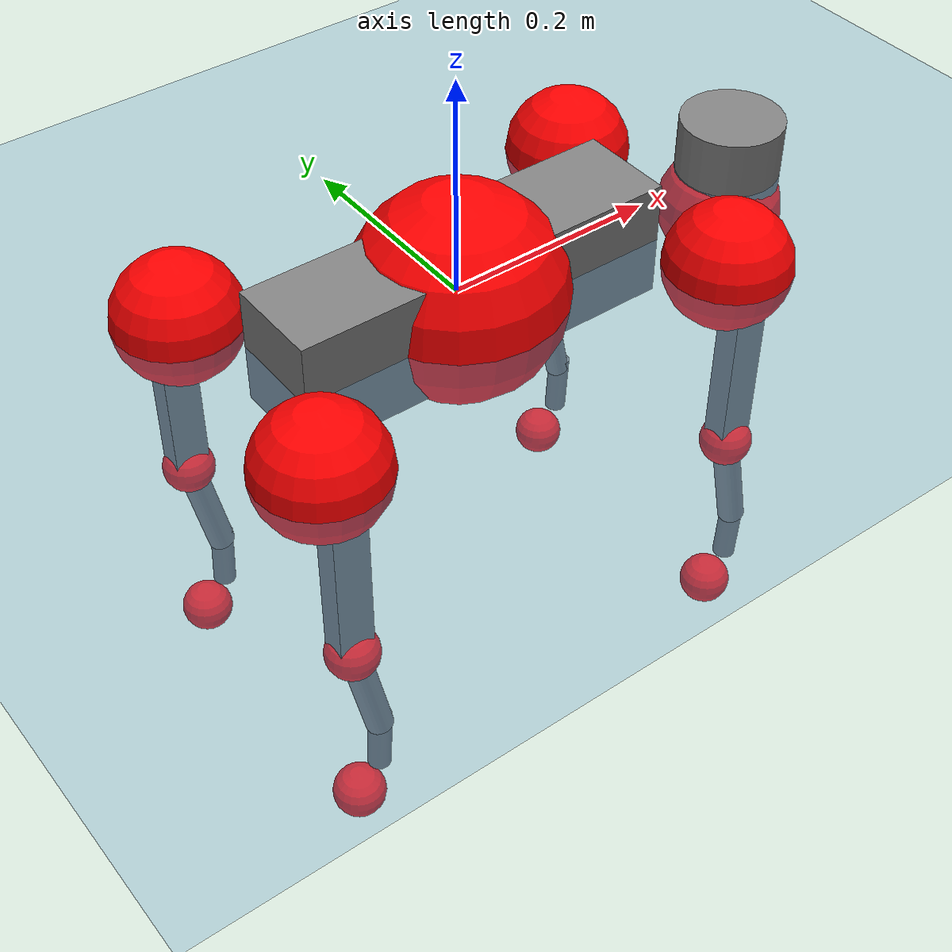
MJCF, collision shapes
<mujoco model="go2">
  <compiler angle="radian" assetdir="assets" balanceinertia="true" inertiafromgeom="false"/>

  <option timestep="0.005" density="1.2" viscosity="2e-05"/>

  <size nkey="1"/>

  <visual>
    <quality shadowsize="8192"/>
    <map shadowclip="0.5"/>
  </visual>

  <default>
    <default class="/">
      <geom contype="0" conaffinity="0" group="1" solref="-1000 -80"/>
      <site size="0.01 0.005 0.005" group="5"/>
      <general forcelimited="true" biastype="affine" gainprm="20" biasprm="0 -20 -0.5"/>
      <default class="go2">
        <joint armature="0.01" damping="0.01" frictionloss="0.2"/>
        <geom condim="1" margin="0.001"/>
        <default class="visual">
          <geom type="mesh" group="2"/>
        </default>
        <default class="collision">
          <geom group="3"/>
          <default class="foot">
            <geom size="0.022 0 0" condim="6" priority="1" friction="0.8 0.02 0.01" solimp="0.015 1 0.022"/>
          </default>
        </default>
        <default class="reward_collision_sphere">
          <geom group="5" rgba="1 0 0 1"/>
        </default>
      </default>
    </default>
  </default>

  <asset>
    <texture type="skybox" colorspace="auto" name="//unnamed_texture_0" builtin="gradient" rgb1="0.95 0.95 0.95" rgb2="0.95 0.95 0.95" width="100" height="600"/>
    <texture type="2d" colorspace="auto" name="texplane" builtin="checker" rgb1="0.345 0.575 0.748" rgb2="0.345 0.575 0.748" markrgb="1 1 1" width="512" height="512"/>
    <material name="MatPlane" class="/" texture="texplane" texuniform="true" texrepeat="2 2" specular="0.9"/>
    <material name="metal" class="/" rgba="0.9 0.95 0.95 1"/>
    <material name="black" class="/" rgba="0 0 0 1"/>
    <material name="white" class="/"/>
    <material name="gray" class="/" rgba="0.671705 0.692426 0.77427 1"/>
    <mesh name="base_0" class="/" file="base_0.obj"/>
    <mesh name="base_1" class="/" file="base_1.obj"/>
    <mesh name="base_2" class="/" file="base_2.obj"/>
    <mesh name="base_3" class="/" file="base_3.obj"/>
    <mesh name="base_4" class="/" file="base_4.obj"/>
    <mesh name="hip_0" class="/" file="hip_0.obj"/>
    <mesh name="hip_1" class="/" file="hip_1.obj"/>
    <mesh name="thigh_0" class="/" file="thigh_0.obj"/>
    <mesh name="thigh_1" class="/" file="thigh_1.obj"/>
    <mesh name="thigh_mirror_0" class="/" file="thigh_mirror_0.obj"/>
    <mesh name="thigh_mirror_1" class="/" file="thigh_mirror_1.obj"/>
    <mesh name="calf_0" class="/" file="calf_0.obj"/>
    <mesh name="calf_1" class="/" file="calf_1.obj"/>
    <mesh name="calf_mirror_0" class="/" file="calf_mirror_0.obj"/>
    <mesh name="calf_mirror_1" class="/" file="calf_mirror_1.obj"/>
    <mesh name="foot" class="/" file="foot.obj"/>
  </asset>

  <worldbody>
    <geom name="floor" class="/" size="100 100 0.125" type="plane" group="0" material="MatPlane"/>
    <light name="toplight_shadow" class="/" pos="0 0 5" dir="0.0990148 0.0990148 -0.990148" type="directional" ambient="0.04 0.04 0.04" diffuse="0.55 0.55 0.55" specular="0.12 0.12 0.12"/>
    <light name="toplight_fill" class="/" pos="0 0 5" dir="0.0990148 0.0990148 -0.990148" type="directional" castshadow="false" ambient="0.04 0.04 0.04" diffuse="0.3 0.3 0.3" specular="0.08 0.08 0.08"/>
    <body name="trunk" childclass="go2" pos="0.000944487 -0.00084544 -2.83336e-05" quat="1 1.87214e-05 -2.72386e-05 4.27199e-06">
      <inertial pos="0.0224685 -0.000319967 -0.00461809" quat="-0.00129407 0.714789 0.00246373 0.699334" mass="5.94008" diaginertia="0.149034 0.0679646 0.0121807"/>
      <joint name="//unnamed_joint_0" type="free" armature="0" damping="0" frictionloss="0"/>
      <geom name="//unnamed_geom_1" class="visual" material="black" mesh="base_0"/>
      <geom name="//unnamed_geom_2" class="visual" material="black" mesh="base_1"/>
      <geom name="//unnamed_geom_3" class="visual" material="black" mesh="base_2"/>
      <geom name="//unnamed_geom_4" class="visual" material="white" mesh="base_3"/>
      <geom name="//unnamed_geom_5" class="visual" material="gray" mesh="base_4"/>
      <geom name="trunk_1" class="collision" size="0.179548 0.0446245 0.0544084" type="box"/>
      <geom name="trunk_2" class="collision" size="0.0477267 0.042954" pos="0.303472 0 0.00869185" type="cylinder"/>
      <geom name="trunk_3" class="collision" size="0.0448631" pos="0.31199 0 -0.0521511"/>
      <geom name="//unnamed_geom_9" class="reward_collision_sphere" size="0.0954534"/>
      <geom name="//unnamed_geom_10" class="reward_collision_sphere" size="0.057272" pos="0.298148 0 -0.0391133"/>
      <site name="imu" pos="-0.0281072 -0.00262405 0.0290864" size="0.00954534"/>
      <camera name="track" pos="0 -1.8592 0" quat="0.707107 0.707107 0 0" mode="trackcom"/>
      <camera name="ego_camera" pos="0.332222 0 0.0391133" quat="-0.5 -0.5 0.5 0.5"/>
      <body name="FL_hip" pos="0.205808 0.0443634 0.00119402" quat="1 0.000131855 -0.000239272 0.000108608">
        <inertial pos="-0.00682265 0.00280555 1.24e-05" quat="0.496344 0.49972 0.505954 0.497929" mass="0.590185" diaginertia="0.00121037 0.000416524 0.000237647"/>
        <joint name="FL_hip_joint" pos="0 0 0" axis="0.99991 -0.00819635 -0.010596" range="-1.04994 1.04931" armature="0.00880702" damping="0.00737287" frictionloss="0.181578"/>
        <geom name="//unnamed_geom_11" class="visual" material="metal" mesh="hip_0"/>
        <geom name="//unnamed_geom_12" class="visual" material="gray" mesh="hip_1"/>
        <geom name="//unnamed_geom_13" class="collision" size="0.0439086 0.0190907" pos="0 0.0743682 0" quat="0.707107 0.707107 0 0" type="cylinder"/>
        <geom name="//unnamed_geom_14" class="reward_collision_sphere" size="0.057272" pos="0 0.0650722 0"/>
        <body name="FL_thigh" pos="-2.04781e-05 0.0894833 0.00129795" quat="1 0.000400853 0.000181725 -0.000301074">
          <inertial pos="-0.00442081 -0.0207101 -0.0299372" quat="0.831366 0.083349 -0.0164362 0.549193" mass="1.00671" diaginertia="0.00817685 0.00408768 0.000441062"/>
          <joint name="FL_thigh_joint" pos="0 0 0" axis="0.00353223 0.999991 0.00228199" range="-1.5886 3.49393" armature="0.00978066" damping="0.00835338" frictionloss="0.198892"/>
          <geom name="//unnamed_geom_15" class="visual" material="metal" mesh="thigh_0"/>
          <geom name="//unnamed_geom_16" class="visual" material="gray" mesh="thigh_1"/>
          <geom name="//unnamed_geom_17" class="collision" size="0.101658 0.011693 0.0162271" pos="0 0 -0.0925682" quat="0.707107 0 0.707107 0" type="box"/>
          <body name="FL_calf" pos="-0.000404138 -0.00213224 -0.185339" quat="1 -7.25641e-05 0.000103224 7.99115e-05">
            <inertial pos="0.00590424 -0.00086217 -0.122397" quat="0.707061 0.00121154 -0.008582 0.707099" mass="0.205993" diaginertia="0.00202025 0.00100875 2.59311e-05"/>
            <joint name="FL_calf_joint" pos="0 0 0" axis="-0.000169653 0.999957 -0.00932425" stiffness="0.00263818" range="-2.72416 -0.846891" armature="0.00966189" damping="0.0052686" frictionloss="0.193827"/>
            <geom name="//unnamed_geom_18" class="visual" material="gray" mesh="calf_0"/>
            <geom name="//unnamed_geom_19" class="visual" material="black" mesh="calf_1"/>
            <geom name="FL_calf0" class="collision" size="0.0114544 0.057272" pos="0.00851851 0 -0.0521511" quat="0.994493 0 -0.104807 0" type="cylinder"/>
            <geom name="//unnamed_geom_21" class="collision" size="0.0104999 0.0310223" pos="0.0212963 0 -0.128639" quat="0.999688 0 0.0249974 0" type="cylinder"/>
            <geom name="//unnamed_geom_22" class="visual" pos="0 0 -0.185136" quat="1 0 0 0" material="black" mesh="foot"/>
            <geom name="FL_foot" class="foot" size="0.017644" pos="-0.00212963 0 -0.185136"/>
            <geom name="//unnamed_geom_24" class="reward_collision_sphere" size="0.0238633"/>
            <geom name="//unnamed_geom_25" class="reward_collision_sphere" size="0.0238633" pos="-0.00212963 0 -0.185136"/>
            <site name="FL_foot" class="foot" pos="-0.00212963 0 -0.185136" size="0.00954534"/>
          </body>
        </body>
      </body>
      <body name="FR_hip" pos="0.205115 -0.0409461 -0.000821529" quat="1 -0.000162257 -5.09821e-05 -2.91928e-05">
        <inertial pos="-0.00384055 -0.00200681 -0.00209121" quat="0.498707 0.50541 0.496534 0.499305" mass="0.604279" diaginertia="0.001234 0.000423974 0.00024268"/>
        <joint name="FR_hip_joint" pos="0 0 0" axis="0.999998 0.00150901 0.00133781" stiffness="0.0065185" range="-1.07507 1.05613" armature="0.00963344" damping="0.0133508" frictionloss="0.186074"/>
        <geom name="//unnamed_geom_26" class="visual" pos="0 5.26329e-10 2.25753e-08" quat="4.63268e-05 1 0 0" material="metal" mesh="hip_0"/>
        <geom name="//unnamed_geom_27" class="visual" pos="0 8.53242e-10 -5.58374e-08" quat="4.63268e-05 1 0 0" material="gray" mesh="hip_1"/>
        <geom name="//unnamed_geom_28" class="collision" size="0.0439086 0.0190907" pos="0 -0.0743682 0" quat="0.707107 0.707107 0 0" type="cylinder"/>
        <geom name="//unnamed_geom_29" class="reward_collision_sphere" size="0.057272" pos="0 -0.0650722 0"/>
        <body name="FR_thigh" pos="2.82163e-05 -0.0890969 -0.000299838" quat="1 -2.83539e-05 -6.97966e-05 1.85653e-05">
          <inertial pos="-0.00269165 0.0228419 -0.0286029" quat="0.551881 -0.0203181 0.0851529 0.829315" mass="0.99463" diaginertia="0.00807921 0.00405248 0.000433053"/>
          <joint name="FR_thigh_joint" pos="0 0 0" axis="0.00171649 -0.999993 -0.00332134" range="-3.5016 1.54958" armature="0.00966083" damping="0.0121281" frictionloss="0.194742"/>
          <geom name="//unnamed_geom_30" class="visual" material="metal" mesh="thigh_mirror_0"/>
          <geom name="//unnamed_geom_31" class="visual" material="gray" mesh="thigh_mirror_1"/>
          <geom name="//unnamed_geom_32" class="collision" size="0.101658 0.011693 0.0162271" pos="0 0 -0.0925682" quat="0.707107 0 0.707107 0" type="box"/>
          <body name="FR_calf" pos="-0.000293719 -0.000897854 -0.184437" quat="1 0.00063143 0.000327457 0.000413941">
            <inertial pos="0.00873319 0.00129131 -0.122775" quat="0.704222 -0.0025495 0.000828888 0.709975" mass="0.207098" diaginertia="0.00200166 0.00101794 2.67338e-05"/>
            <joint name="FR_calf_joint" pos="0 0 0" axis="-0.000550321 -1 0.000218977" range="0.806629 2.72361" armature="0.00980669" damping="0.0145736" frictionloss="0.198929"/>
            <geom name="//unnamed_geom_33" class="visual" material="gray" mesh="calf_mirror_0"/>
            <geom name="//unnamed_geom_34" class="visual" material="black" mesh="calf_mirror_1"/>
            <geom name="FR_calf0" class="collision" size="0.0124089 0.057272" pos="0.0106481 0 -0.0521511" quat="0.995004 0 -0.0998334 0" type="cylinder"/>
            <geom name="//unnamed_geom_36" class="collision" size="0.0104999 0.0310223" pos="0.0212963 0 -0.128639" quat="0.999688 0 0.0249974 0" type="cylinder"/>
            <geom name="//unnamed_geom_37" class="visual" pos="0 0 -0.185136" quat="1 0 0 0" material="black" mesh="foot"/>
            <geom name="FR_foot" class="foot" size="0.0218811" pos="-0.00212963 0 -0.185136"/>
            <geom name="//unnamed_geom_39" class="reward_collision_sphere" size="0.0238633"/>
            <geom name="//unnamed_geom_40" class="reward_collision_sphere" size="0.0238633" pos="-0.00212963 0 -0.185136"/>
            <site name="FR_foot" class="foot" pos="-0.00212963 0 -0.185136" size="0.00954534"/>
          </body>
        </body>
      </body>
      <body name="RL_hip" pos="-0.204062 0.0431288 0.000720955" quat="1 -6.47746e-05 5.58606e-05 -0.000108704">
        <inertial pos="0.00709216 0.000320613 0.000155111" quat="0.502237 0.499898 0.497801 0.500053" mass="0.595503" diaginertia="0.00120904 0.000412115 0.000235571"/>
        <joint name="RL_hip_joint" pos="0 0 0" axis="-0.999807 -0.00743003 0.0181656" range="-1.05536 1.03125" armature="0.00950247" damping="0.00908132" frictionloss="0.197059"/>
        <geom name="//unnamed_geom_41" class="visual" pos="-1.70423e-09 0 -3.34069e-07" quat="4.63268e-05 0 1 0" material="metal" mesh="hip_0"/>
        <geom name="//unnamed_geom_42" class="visual" pos="-2.76277e-09 0 -2.96272e-07" quat="4.63268e-05 0 1 0" material="gray" mesh="hip_1"/>
        <geom name="//unnamed_geom_43" class="collision" size="0.0439086 0.0190907" pos="0 0.0743682 0" quat="0.707107 0.707107 0 0" type="cylinder"/>
        <geom name="//unnamed_geom_44" class="reward_collision_sphere" size="0.057272" pos="0 0.0650722 0"/>
        <body name="RL_thigh" pos="-0.000878969 0.0874469 0.000884609" quat="1 0.000324217 -8.52658e-05 0.000206172">
          <inertial pos="-0.00362219 -0.0189793 -0.0286567" quat="0.829359 0.0844622 -0.0198825 0.551937" mass="1.00278" diaginertia="0.00816833 0.00403933 0.000424945"/>
          <joint name="RL_thigh_joint" pos="0 0 0" axis="-0.00390229 0.99999 0.0021312" range="-0.531441 4.52142" armature="0.0101479" damping="0.00610714" frictionloss="0.196474"/>
          <geom name="//unnamed_geom_45" class="visual" material="metal" mesh="thigh_0"/>
          <geom name="//unnamed_geom_46" class="visual" material="gray" mesh="thigh_1"/>
          <geom name="//unnamed_geom_47" class="collision" size="0.101658 0.011693 0.0162271" pos="0 0 -0.0925682" quat="0.707107 0 0.707107 0" type="box"/>
          <body name="RL_calf" pos="0.000489215 -1.6666e-05 -0.186799" quat="1 -0.000617431 0.000539816 -4.01083e-05">
            <inertial pos="0.00695214 -0.000521118 -0.120797" quat="0.710612 0.00573735 -0.00262853 0.703555" mass="0.207538" diaginertia="0.00205287 0.00103129 2.63353e-05"/>
            <joint name="RL_calf_joint" pos="0 0 0" axis="-0.000195811 1 -0.000507424" stiffness="0.00409984" range="-2.71731 -0.826554" armature="0.00963723" damping="0.00259635" frictionloss="0.189581"/>
            <geom name="//unnamed_geom_48" class="visual" material="gray" mesh="calf_0"/>
            <geom name="//unnamed_geom_49" class="visual" material="black" mesh="calf_1"/>
            <geom name="RL_calf0" class="collision" size="0.0124089 0.057272" pos="0.0106481 0 -0.0521511" quat="0.995004 0 -0.0998334 0" type="cylinder"/>
            <geom name="//unnamed_geom_51" class="collision" size="0.0104999 0.0310223" pos="0.0212963 0 -0.128639" quat="0.999688 0 0.0249974 0" type="cylinder"/>
            <geom name="//unnamed_geom_52" class="visual" pos="0 0 -0.185136" quat="1 0 0 0" material="black" mesh="foot"/>
            <geom name="RL_foot" class="foot" size="0.0180567" pos="-0.00212963 0 -0.185136"/>
            <geom name="//unnamed_geom_54" class="reward_collision_sphere" size="0.0238633"/>
            <geom name="//unnamed_geom_55" class="reward_collision_sphere" size="0.0238633" pos="-0.00212963 0 -0.185136"/>
            <site name="RL_foot" class="foot" pos="-0.00212963 0 -0.185136" size="0.00954534"/>
          </body>
        </body>
      </body>
      <body name="RR_hip" pos="-0.207539 -0.0441462 -0.000997325" quat="1 -5.00131e-05 0.000121022 -0.00031054">
        <inertial pos="0.00531107 -0.00265337 5.01981e-05" quat="0.501319 0.496477 0.492483 0.509559" mass="0.586255" diaginertia="0.00119067 0.000408603 0.000234769"/>
        <joint name="RR_hip_joint" pos="0 0 0" axis="-0.999958 0.00886957 -0.00211999" stiffness="0.00244764" range="-1.04582 1.03853" armature="0.00977017" damping="0.000479105" frictionloss="0.189438"/>
        <geom name="//unnamed_geom_56" class="visual" pos="1.69955e-09 5.26329e-10 -3.56645e-07" quat="2.14617e-09 4.63268e-05 4.63268e-05 -1" material="metal" mesh="hip_0"/>
        <geom name="//unnamed_geom_57" class="visual" pos="2.77435e-09 8.53242e-10 -2.40434e-07" quat="2.14617e-09 4.63268e-05 4.63268e-05 -1" material="gray" mesh="hip_1"/>
        <geom name="//unnamed_geom_58" class="collision" size="0.0439086 0.0190907" pos="0 -0.0743682 0" quat="0.707107 0.707107 0 0" type="cylinder"/>
        <geom name="//unnamed_geom_59" class="reward_collision_sphere" size="0.057272" pos="0 -0.0650722 0"/>
        <body name="RR_thigh" pos="0.000275029 -0.0886771 -0.000215993" quat="1 -0.000136406 0.00023069 -5.06898e-05">
          <inertial pos="-0.00363082 0.0208075 -0.0288103" quat="0.557439 -0.0259388 0.0855054 0.825396" mass="1.00184" diaginertia="0.00817933 0.00408128 0.000446514"/>
          <joint name="RR_thigh_joint" pos="0 0 0" axis="-0.000245244 -1 -0.000444886" range="-4.53306 0.510735" armature="0.0097783" damping="0.0129605" frictionloss="0.20022"/>
          <geom name="//unnamed_geom_60" class="visual" material="metal" mesh="thigh_mirror_0"/>
          <geom name="//unnamed_geom_61" class="visual" material="gray" mesh="thigh_mirror_1"/>
          <geom name="//unnamed_geom_62" class="collision" size="0.101658 0.011693 0.0162271" pos="0 0 -0.0925682" quat="0.707107 0 0.707107 0" type="box"/>
          <body name="RR_calf" pos="0.000821126 -0.0013279 -0.18603" quat="1 9.54053e-05 -7.01243e-05 -3.6713e-06">
            <inertial pos="0.00565848 -0.0010462 -0.121683" quat="0.703904 -0.00461765 0.00151578 0.710279" mass="0.210585" diaginertia="0.00204392 0.00102108 2.62147e-05"/>
            <joint name="RR_calf_joint" pos="0 0 0" axis="-0.0035048 -0.999985 -0.00411279" range="0.851478 2.75406" armature="0.00958607" damping="0.010442" frictionloss="0.204822"/>
            <geom name="//unnamed_geom_63" class="visual" material="gray" mesh="calf_mirror_0"/>
            <geom name="//unnamed_geom_64" class="visual" material="black" mesh="calf_mirror_1"/>
            <geom name="RR_calf0" class="collision" size="0.0124089 0.057272" pos="0.0106481 0 -0.0521511" quat="0.995004 0 -0.0998334 0" type="cylinder"/>
            <geom name="//unnamed_geom_66" class="collision" size="0.0104999 0.0310223" pos="0.0212963 0 -0.128639" quat="0.999688 0 0.0249974 0" type="cylinder"/>
            <geom name="//unnamed_geom_67" class="visual" pos="0 0 -0.185136" quat="1 0 0 0" material="black" mesh="foot"/>
            <geom name="RR_foot" class="foot" size="0.0224269" pos="-0.00212963 0 -0.185136"/>
            <geom name="//unnamed_geom_69" class="reward_collision_sphere" size="0.0238633"/>
            <geom name="//unnamed_geom_70" class="reward_collision_sphere" size="0.0238633" pos="-0.00212963 0 -0.185136"/>
            <site name="RR_foot" class="foot" pos="-0.00212963 0 -0.185136" size="0.00954534"/>
          </body>
        </body>
      </body>
    </body>
  </worldbody>

  <contact>
    <pair class="/" geom1="floor" geom2="FL_foot" name="//unnamed_contact_0"/>
    <pair class="/" geom1="floor" geom2="FR_foot" name="//unnamed_contact_1"/>
    <pair class="/" geom1="floor" geom2="RL_foot" name="//unnamed_contact_2"/>
    <pair class="/" geom1="floor" geom2="RR_foot" name="//unnamed_contact_3"/>
  </contact>

  <actuator>
    <general name="FL_hip" class="/" joint="FL_hip_joint" forcerange="-22.5198 22.5198" gainprm="19.1436" biasprm="0 -19.1436 -0.475702"/>
    <general name="FL_thigh" class="/" joint="FL_thigh_joint" forcerange="-22.1736 22.1736" gainprm="19.1436" biasprm="0 -19.1436 -0.475702"/>
    <general name="FL_calf" class="/" joint="FL_calf_joint" forcerange="-41.6335 41.6335" gainprm="19.1436" biasprm="0 -19.1436 -0.475702"/>
    <general name="FR_hip" class="/" joint="FR_hip_joint" forcerange="-22.547 22.547" gainprm="19.1436" biasprm="0 -19.1436 -0.475702"/>
    <general name="FR_thigh" class="/" joint="FR_thigh_joint" forcerange="-22.9216 22.9216" gainprm="19.1436" biasprm="0 -19.1436 -0.475702"/>
    <general name="FR_calf" class="/" joint="FR_calf_joint" forcerange="-42.5979 42.5979" gainprm="19.1436" biasprm="0 -19.1436 -0.475702"/>
    <general name="RL_hip" class="/" joint="RL_hip_joint" forcerange="-22.5208 22.5208" gainprm="19.1436" biasprm="0 -19.1436 -0.475702"/>
    <general name="RL_thigh" class="/" joint="RL_thigh_joint" forcerange="-22.1737 22.1737" gainprm="19.1436" biasprm="0 -19.1436 -0.475702"/>
    <general name="RL_calf" class="/" joint="RL_calf_joint" forcerange="-44.9162 44.9162" gainprm="19.1436" biasprm="0 -19.1436 -0.475702"/>
    <general name="RR_hip" class="/" joint="RR_hip_joint" forcerange="-22.7537 22.7537" gainprm="19.1436" biasprm="0 -19.1436 -0.475702"/>
    <general name="RR_thigh" class="/" joint="RR_thigh_joint" forcerange="-22.289 22.289" gainprm="19.1436" biasprm="0 -19.1436 -0.475702"/>
    <general name="RR_calf" class="/" joint="RR_calf_joint" forcerange="-40.4856 40.4856" gainprm="19.1436" biasprm="0 -19.1436 -0.475702"/>
  </actuator>

  <sensor>
    <gyro site="imu" name="imu_angular_velocity"/>
    <velocimeter site="imu" name="imu_linear_velocity"/>
    <framelinvel objtype="site" objname="FL_foot" name="FL_foot_global_linear_velocity"/>
    <framelinvel objtype="site" objname="FR_foot" name="FR_foot_global_linear_velocity"/>
    <framelinvel objtype="site" objname="RL_foot" name="RL_foot_global_linear_velocity"/>
    <framelinvel objtype="site" objname="RR_foot" name="RR_foot_global_linear_velocity"/>
  </sensor>

  <keyframe>
    <key name="home" qpos="0 0 0.325 1 0 0 0 0.1 0.8 -1.5 -0.1 -0.8 1.5 -0.1 0.8 -1.5 0.1 -0.8 1.5"/>
  </keyframe>
</mujoco>
